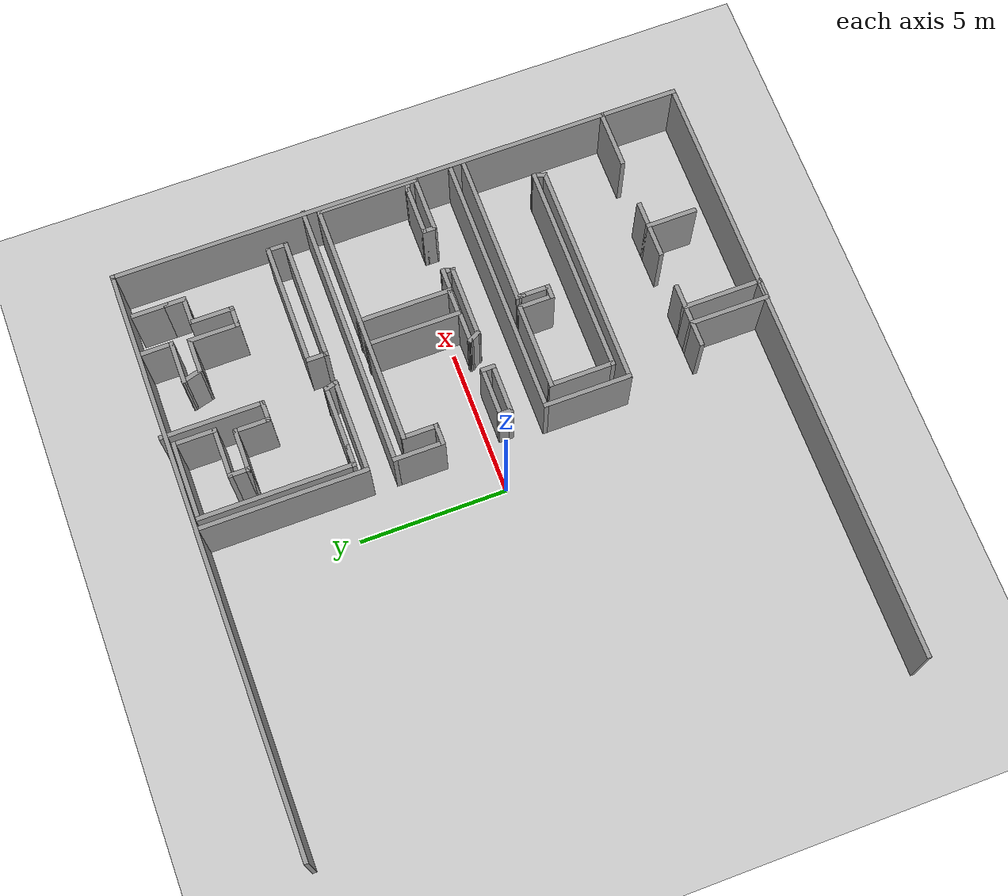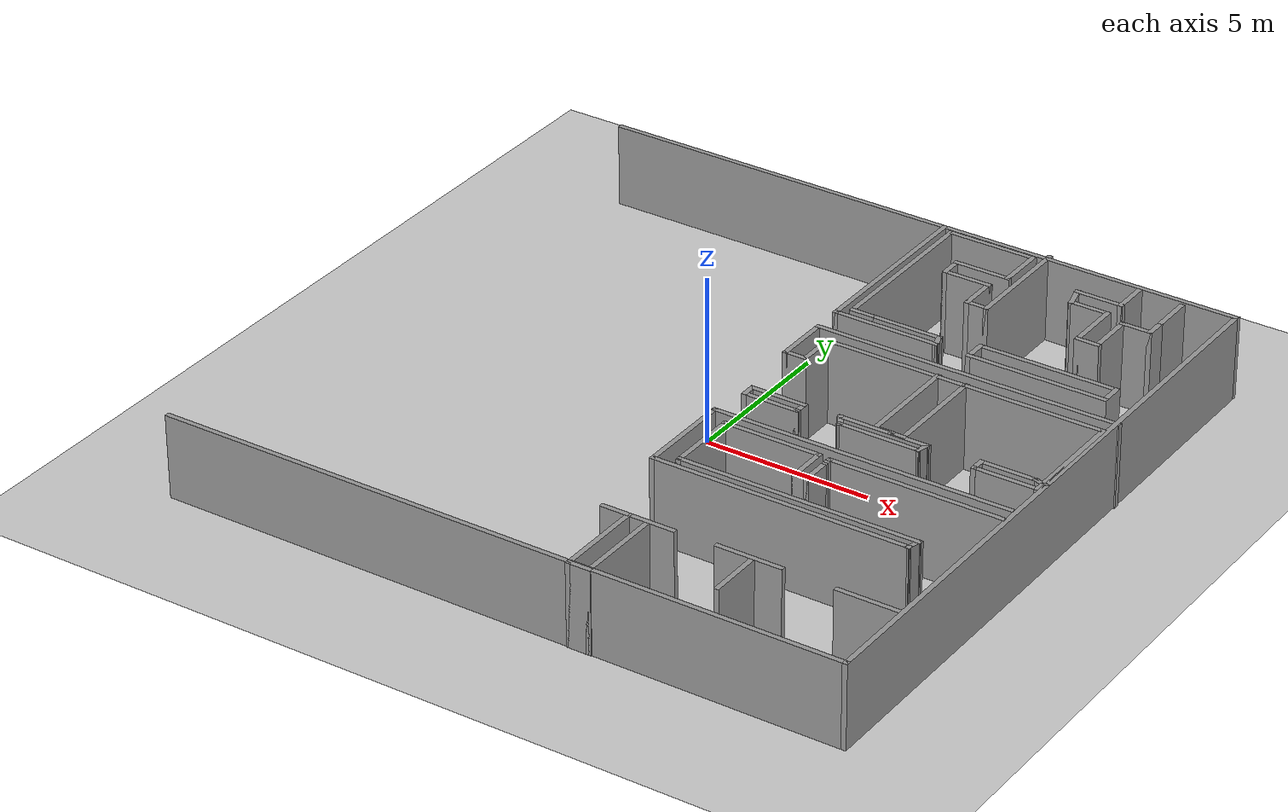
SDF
<sdf version="1.6">
 <world name="default">
  <model name="ground_plane">
   <static>1</static>
   <link name="link">
    <collision name="collision">
     <geometry><plane><normal>0 0 1</normal><size>100 100</size></plane></geometry>
     <surface>
      <contact><collide_bitmask>65535</collide_bitmask></contact>
      <friction><ode><mu>100</mu><mu2>50</mu2></ode></friction>
     </surface>
    </collision>
    <visual name="visual">
     <cast_shadows>0</cast_shadows>
     <geometry><plane><normal>0 0 1</normal><size>100 100</size></plane></geometry>
     <material>
      <script><uri>file://media/materials/scripts/gazebo.material</uri><name>Gazebo/Grey</name></script>
     </material>
    </visual>
   </link>
  </model>
  <model name="maze3">
   <pose>-2.12567 -0.040399 0 0 -0 0</pose>
   <link name="Wall_12">
    <collision name="Wall_12_Collision">
     <geometry><box><size>20.75 0.15 2.5</size></box></geometry>
     <pose>0 0 1.25 0 -0 0</pose>
    </collision>
    <visual name="Wall_12_Visual">
     <pose>0 0 1.25 0 -0 0</pose>
     <geometry><box><size>20.75 0.15 2.5</size></box></geometry>
     <material>
      <script><uri>file://media/materials/scripts/gazebo.material</uri><name>Gazebo/Grey</name></script>
      <ambient>1 1 1 1</ambient>
     </material>
     <meta><layer>0</layer></meta>
    </visual>
    <pose>2.33017 -9.8513 0 0 -0 0</pose>
   </link>
   <link name="Wall_13">
    <collision name="Wall_13_Collision">
     <geometry><box><size>19.75 0.15 2.5</size></box></geometry>
     <pose>0 0 1.25 0 -0 0</pose>
    </collision>
    <visual name="Wall_13_Visual">
     <pose>0 0 1.25 0 -0 0</pose>
     <geometry><box><size>19.75 0.15 2.5</size></box></geometry>
     <material>
      <script><uri>file://media/materials/scripts/gazebo.material</uri><name>Gazebo/Grey</name></script>
      <ambient>1 1 1 1</ambient>
     </material>
     <meta><layer>0</layer></meta>
    </visual>
    <pose>12.6302 -0.051301 0 0 -0 1.5708</pose>
   </link>
   <link name="Wall_133">
    <collision name="Wall_133_Collision">
     <geometry><box><size>5.75 0.15 2.5</size></box></geometry>
     <pose>0 0 1.25 0 -0 0</pose>
    </collision>
    <visual name="Wall_133_Visual">
     <pose>0 0 1.25 0 -0 0</pose>
     <geometry><box><size>5.75 0.15 2.5</size></box></geometry>
     <material>
      <script><uri>file://media/materials/scripts/gazebo.material</uri><name>Gazebo/Grey</name></script>
      <ambient>1 1 1 1</ambient>
     </material>
     <meta><layer>0</layer></meta>
    </visual>
    <pose>3.55274 6.93876 0 0 -0 -1.5708</pose>
   </link>
   <link name="Wall_134">
    <collision name="Wall_134_Collision">
     <geometry><box><size>3.25 0.15 2.5</size></box></geometry>
     <pose>0 0 1.25 0 -0 0</pose>
    </collision>
    <visual name="Wall_134_Visual">
     <pose>0 0 1.25 0 -0 0</pose>
     <geometry><box><size>3.25 0.15 2.5</size></box></geometry>
     <material>
      <script><uri>file://media/materials/scripts/gazebo.material</uri><name>Gazebo/Grey</name></script>
      <ambient>1 1 1 1</ambient>
     </material>
     <meta><layer>0</layer></meta>
    </visual>
    <pose>5.10274 4.13876 0 0 -0 0</pose>
   </link>
   <link name="Wall_135">
    <collision name="Wall_135_Collision">
     <geometry><box><size>0.5 0.15 2.5</size></box></geometry>
     <pose>0 0 1.25 0 -0 0</pose>
    </collision>
    <visual name="Wall_135_Visual">
     <pose>0 0 1.25 0 -0 0</pose>
     <geometry><box><size>0.5 0.15 2.5</size></box></geometry>
     <material>
      <script><uri>file://media/materials/scripts/gazebo.material</uri><name>Gazebo/Grey</name></script>
      <ambient>1 1 1 1</ambient>
     </material>
     <meta><layer>0</layer></meta>
    </visual>
    <pose>6.60745 4.3078 0 0 -0 1.8326</pose>
   </link>
   <link name="Wall_136">
    <collision name="Wall_136_Collision">
     <geometry><box><size>2.25 0.15 2.5</size></box></geometry>
     <pose>0 0 1.25 0 -0 0</pose>
    </collision>
    <visual name="Wall_136_Visual">
     <pose>0 0 1.25 0 -0 0</pose>
     <geometry><box><size>2.25 0.15 2.5</size></box></geometry>
     <material>
      <script><uri>file://media/materials/scripts/gazebo.material</uri><name>Gazebo/Grey</name></script>
      <ambient>1 1 1 1</ambient>
     </material>
     <meta><layer>0</layer></meta>
    </visual>
    <pose>5.51215 4.47684 0 0 -0 3.14159</pose>
   </link>
   <link name="Wall_137">
    <collision name="Wall_137_Collision">
     <geometry><box><size>0.75 0.15 2.5</size></box></geometry>
     <pose>0 0 1.25 0 -0 0</pose>
    </collision>
    <visual name="Wall_137_Visual">
     <pose>0 0 1.25 0 -0 0</pose>
     <geometry><box><size>0.75 0.15 2.5</size></box></geometry>
     <material>
      <script><uri>file://media/materials/scripts/gazebo.material</uri><name>Gazebo/Grey</name></script>
      <ambient>1 1 1 1</ambient>
     </material>
     <meta><layer>0</layer></meta>
    </visual>
    <pose>4.16215 4.47684 0 0 -0 3.14159</pose>
   </link>
   <link name="Wall_138">
    <collision name="Wall_138_Collision">
     <geometry><box><size>5.25 0.15 2.5</size></box></geometry>
     <pose>0 0 1.25 0 -0 0</pose>
    </collision>
    <visual name="Wall_138_Visual">
     <pose>0 0 1.25 0 -0 0</pose>
     <geometry><box><size>5.25 0.15 2.5</size></box></geometry>
     <material>
      <script><uri>file://media/materials/scripts/gazebo.material</uri><name>Gazebo/Grey</name></script>
      <ambient>1 1 1 1</ambient>
     </material>
     <meta><layer>0</layer></meta>
    </visual>
    <pose>3.86215 7.02684 0 0 -0 1.5708</pose>
   </link>
   <link name="Wall_139">
    <collision name="Wall_139_Collision">
     <geometry><box><size>2.75 0.15 2.5</size></box></geometry>
     <pose>0 0 1.25 0 -0 0</pose>
    </collision>
    <visual name="Wall_139_Visual">
     <pose>0 0 1.25 0 -0 0</pose>
     <geometry><box><size>2.75 0.15 2.5</size></box></geometry>
     <material>
      <script><uri>file://media/materials/scripts/gazebo.material</uri><name>Gazebo/Grey</name></script>
      <ambient>1 1 1 1</ambient>
     </material>
     <meta><layer>0</layer></meta>
    </visual>
    <pose>5.16215 9.57684 0 0 -0 0</pose>
   </link>
   <link name="Wall_14">
    <collision name="Wall_14_Collision">
     <geometry><box><size>20 0.15 2.5</size></box></geometry>
     <pose>0 0 1.25 0 -0 0</pose>
    </collision>
    <visual name="Wall_14_Visual">
     <pose>0 0 1.25 0 -0 0</pose>
     <geometry><box><size>20 0.15 2.5</size></box></geometry>
     <material>
      <script><uri>file://media/materials/scripts/gazebo.material</uri><name>Gazebo/Grey</name></script>
      <ambient>1 1 1 1</ambient>
     </material>
     <meta><layer>0</layer></meta>
    </visual>
    <pose>2.70517 9.7487 0 0 -0 3.14159</pose>
   </link>
   <link name="Wall_140">
    <collision name="Wall_140_Collision">
     <geometry><box><size>1.5 0.15 2.5</size></box></geometry>
     <pose>0 0 1.25 0 -0 0</pose>
    </collision>
    <visual name="Wall_140_Visual">
     <pose>0 0 1.25 0 -0 0</pose>
     <geometry><box><size>1.5 0.15 2.5</size></box></geometry>
     <material>
      <script><uri>file://media/materials/scripts/gazebo.material</uri><name>Gazebo/Grey</name></script>
      <ambient>1 1 1 1</ambient>
     </material>
     <meta><layer>0</layer></meta>
    </visual>
    <pose>6.46215 8.90184 0 0 -0 -1.5708</pose>
   </link>
   <link name="Wall_141">
    <collision name="Wall_141_Collision">
     <geometry><box><size>1.75 0.15 2.5</size></box></geometry>
     <pose>0 0 1.25 0 -0 0</pose>
    </collision>
    <visual name="Wall_141_Visual">
     <pose>0 0 1.25 0 -0 0</pose>
     <geometry><box><size>1.75 0.15 2.5</size></box></geometry>
     <material>
      <script><uri>file://media/materials/scripts/gazebo.material</uri><name>Gazebo/Grey</name></script>
      <ambient>1 1 1 1</ambient>
     </material>
     <meta><layer>0</layer></meta>
    </visual>
    <pose>5.66215 8.22683 0 0 -0 3.14159</pose>
   </link>
   <link name="Wall_142">
    <collision name="Wall_142_Collision">
     <geometry><box><size>0.75 0.15 2.5</size></box></geometry>
     <pose>0 0 1.25 0 -0 0</pose>
    </collision>
    <visual name="Wall_142_Visual">
     <pose>0 0 1.25 0 -0 0</pose>
     <geometry><box><size>0.75 0.15 2.5</size></box></geometry>
     <material>
      <script><uri>file://media/materials/scripts/gazebo.material</uri><name>Gazebo/Grey</name></script>
      <ambient>1 1 1 1</ambient>
     </material>
     <meta><layer>0</layer></meta>
    </visual>
    <pose>4.86215 7.92684 0 0 -0 -1.5708</pose>
   </link>
   <link name="Wall_143">
    <collision name="Wall_143_Collision">
     <geometry><box><size>1.5 0.15 2.5</size></box></geometry>
     <pose>0 0 1.25 0 -0 0</pose>
    </collision>
    <visual name="Wall_143_Visual">
     <pose>0 0 1.25 0 -0 0</pose>
     <geometry><box><size>1.5 0.15 2.5</size></box></geometry>
     <material>
      <script><uri>file://media/materials/scripts/gazebo.material</uri><name>Gazebo/Grey</name></script>
      <ambient>1 1 1 1</ambient>
     </material>
     <meta><layer>0</layer></meta>
    </visual>
    <pose>5.53715 7.62684 0 0 -0 0</pose>
   </link>
   <link name="Wall_144">
    <collision name="Wall_144_Collision">
     <geometry><box><size>1.25 0.15 2.5</size></box></geometry>
     <pose>0 0 1.25 0 -0 0</pose>
    </collision>
    <visual name="Wall_144_Visual">
     <pose>0 0 1.25 0 -0 0</pose>
     <geometry><box><size>1.25 0.15 2.5</size></box></geometry>
     <material>
      <script><uri>file://media/materials/scripts/gazebo.material</uri><name>Gazebo/Grey</name></script>
      <ambient>1 1 1 1</ambient>
     </material>
     <meta><layer>0</layer></meta>
    </visual>
    <pose>6.21215 7.07684 0 0 -0 -1.5708</pose>
   </link>
   <link name="Wall_145">
    <collision name="Wall_145_Collision">
     <geometry><box><size>0.75 0.15 2.5</size></box></geometry>
     <pose>0 0 1.25 0 -0 0</pose>
    </collision>
    <visual name="Wall_145_Visual">
     <pose>0 0 1.25 0 -0 0</pose>
     <geometry><box><size>0.75 0.15 2.5</size></box></geometry>
     <material>
      <script><uri>file://media/materials/scripts/gazebo.material</uri><name>Gazebo/Grey</name></script>
      <ambient>1 1 1 1</ambient>
     </material>
     <meta><layer>0</layer></meta>
    </visual>
    <pose>6.51215 6.52684 0 0 -0 0</pose>
   </link>
   <link name="Wall_146">
    <collision name="Wall_146_Collision">
     <geometry><box><size>3.5 0.15 2.5</size></box></geometry>
     <pose>0 0 1.25 0 -0 0</pose>
    </collision>
    <visual name="Wall_146_Visual">
     <pose>0 0 1.25 0 -0 0</pose>
     <geometry><box><size>3.5 0.15 2.5</size></box></geometry>
     <material>
      <script><uri>file://media/materials/scripts/gazebo.material</uri><name>Gazebo/Grey</name></script>
      <ambient>1 1 1 1</ambient>
     </material>
     <meta><layer>0</layer></meta>
    </visual>
    <pose>6.81215 8.20184 0 0 -0 1.5708</pose>
   </link>
   <link name="Wall_148">
    <collision name="Wall_148_Collision">
     <geometry><box><size>4.25 0.15 2.5</size></box></geometry>
     <pose>0 0 1.25 0 -0 0</pose>
    </collision>
    <visual name="Wall_148_Visual">
     <pose>0 0 1.25 0 -0 0</pose>
     <geometry><box><size>4.25 0.15 2.5</size></box></geometry>
     <material>
      <script><uri>file://media/materials/scripts/gazebo.material</uri><name>Gazebo/Grey</name></script>
      <ambient>1 1 1 1</ambient>
     </material>
     <meta><layer>0</layer></meta>
    </visual>
    <pose>9.74337 4.71418 0 0 -0 0</pose>
   </link>
   <link name="Wall_149">
    <collision name="Wall_149_Collision">
     <geometry><box><size>0.75 0.15 2.5</size></box></geometry>
     <pose>0 0 1.25 0 -0 0</pose>
    </collision>
    <visual name="Wall_149_Visual">
     <pose>0 0 1.25 0 -0 0</pose>
     <geometry><box><size>0.75 0.15 2.5</size></box></geometry>
     <material>
      <script><uri>file://media/materials/scripts/gazebo.material</uri><name>Gazebo/Grey</name></script>
      <ambient>1 1 1 1</ambient>
     </material>
     <meta><layer>0</layer></meta>
    </visual>
    <pose>11.7934 4.41418 0 0 -0 -1.5708</pose>
   </link>
   <link name="Wall_150">
    <collision name="Wall_150_Collision">
     <geometry><box><size>4.25 0.15 2.5</size></box></geometry>
     <pose>0 0 1.25 0 -0 0</pose>
    </collision>
    <visual name="Wall_150_Visual">
     <pose>0 0 1.25 0 -0 0</pose>
     <geometry><box><size>4.25 0.15 2.5</size></box></geometry>
     <material>
      <script><uri>file://media/materials/scripts/gazebo.material</uri><name>Gazebo/Grey</name></script>
      <ambient>1 1 1 1</ambient>
     </material>
     <meta><layer>0</layer></meta>
    </visual>
    <pose>9.74337 4.11418 0 0 -0 3.14159</pose>
   </link>
   <link name="Wall_151">
    <collision name="Wall_151_Collision">
     <geometry><box><size>0.75 0.15 2.5</size></box></geometry>
     <pose>0 0 1.25 0 -0 0</pose>
    </collision>
    <visual name="Wall_151_Visual">
     <pose>0 0 1.25 0 -0 0</pose>
     <geometry><box><size>0.75 0.15 2.5</size></box></geometry>
     <material>
      <script><uri>file://media/materials/scripts/gazebo.material</uri><name>Gazebo/Grey</name></script>
      <ambient>1 1 1 1</ambient>
     </material>
     <meta><layer>0</layer></meta>
    </visual>
    <pose>7.69337 4.41418 0 0 -0 1.5708</pose>
   </link>
   <link name="Wall_153">
    <collision name="Wall_153_Collision">
     <geometry><box><size>1.25 0.15 2.5</size></box></geometry>
     <pose>0 0 1.25 0 -0 0</pose>
    </collision>
    <visual name="Wall_153_Visual">
     <pose>0 0 1.25 0 -0 0</pose>
     <geometry><box><size>1.25 0.15 2.5</size></box></geometry>
     <material>
      <script><uri>file://media/materials/scripts/gazebo.material</uri><name>Gazebo/Grey</name></script>
      <ambient>1 1 1 1</ambient>
     </material>
     <meta><layer>0</layer></meta>
    </visual>
    <pose>9.74042 9.18876 0 0 -0 -1.5708</pose>
   </link>
   <link name="Wall_154">
    <collision name="Wall_154_Collision">
     <geometry><box><size>1.5 0.15 2.5</size></box></geometry>
     <pose>0 0 1.25 0 -0 0</pose>
    </collision>
    <visual name="Wall_154_Visual">
     <pose>0 0 1.25 0 -0 0</pose>
     <geometry><box><size>1.5 0.15 2.5</size></box></geometry>
     <material>
      <script><uri>file://media/materials/scripts/gazebo.material</uri><name>Gazebo/Grey</name></script>
      <ambient>1 1 1 1</ambient>
     </material>
     <meta><layer>0</layer></meta>
    </visual>
    <pose>9.06542 8.63876 0 0 -0 3.14159</pose>
   </link>
   <link name="Wall_155">
    <collision name="Wall_155_Collision">
     <geometry><box><size>0.75 0.15 2.5</size></box></geometry>
     <pose>0 0 1.25 0 -0 0</pose>
    </collision>
    <visual name="Wall_155_Visual">
     <pose>0 0 1.25 0 -0 0</pose>
     <geometry><box><size>0.75 0.15 2.5</size></box></geometry>
     <material>
      <script><uri>file://media/materials/scripts/gazebo.material</uri><name>Gazebo/Grey</name></script>
      <ambient>1 1 1 1</ambient>
     </material>
     <meta><layer>0</layer></meta>
    </visual>
    <pose>8.46806 8.34898 0 0 -0 -1.309</pose>
   </link>
   <link name="Wall_156">
    <collision name="Wall_156_Collision">
     <geometry><box><size>1.25 0.15 2.5</size></box></geometry>
     <pose>0 0 1.25 0 -0 0</pose>
    </collision>
    <visual name="Wall_156_Visual">
     <pose>0 0 1.25 0 -0 0</pose>
     <geometry><box><size>1.25 0.15 2.5</size></box></geometry>
     <material>
      <script><uri>file://media/materials/scripts/gazebo.material</uri><name>Gazebo/Grey</name></script>
      <ambient>1 1 1 1</ambient>
     </material>
     <meta><layer>0</layer></meta>
    </visual>
    <pose>9.09571 8.05921 0 0 -0 0</pose>
   </link>
   <link name="Wall_157">
    <collision name="Wall_157_Collision">
     <geometry><box><size>1.75 0.15 2.5</size></box></geometry>
     <pose>0 0 1.25 0 -0 0</pose>
    </collision>
    <visual name="Wall_157_Visual">
     <pose>0 0 1.25 0 -0 0</pose>
     <geometry><box><size>1.75 0.15 2.5</size></box></geometry>
     <material>
      <script><uri>file://media/materials/scripts/gazebo.material</uri><name>Gazebo/Grey</name></script>
      <ambient>1 1 1 1</ambient>
     </material>
     <meta><layer>0</layer></meta>
    </visual>
    <pose>9.64571 7.25921 0 0 -0 -1.5708</pose>
   </link>
   <link name="Wall_158">
    <collision name="Wall_158_Collision">
     <geometry><box><size>0.75 0.15 2.5</size></box></geometry>
     <pose>0 0 1.25 0 -0 0</pose>
    </collision>
    <visual name="Wall_158_Visual">
     <pose>0 0 1.25 0 -0 0</pose>
     <geometry><box><size>0.75 0.15 2.5</size></box></geometry>
     <material>
      <script><uri>file://media/materials/scripts/gazebo.material</uri><name>Gazebo/Grey</name></script>
      <ambient>1 1 1 1</ambient>
     </material>
     <meta><layer>0</layer></meta>
    </visual>
    <pose>9.94571 6.45921 0 0 -0 0</pose>
   </link>
   <link name="Wall_159">
    <collision name="Wall_159_Collision">
     <geometry><box><size>1.5 0.15 2.5</size></box></geometry>
     <pose>0 0 1.25 0 -0 0</pose>
    </collision>
    <visual name="Wall_159_Visual">
     <pose>0 0 1.25 0 -0 0</pose>
     <geometry><box><size>1.5 0.15 2.5</size></box></geometry>
     <material>
      <script><uri>file://media/materials/scripts/gazebo.material</uri><name>Gazebo/Grey</name></script>
      <ambient>1 1 1 1</ambient>
     </material>
     <meta><layer>0</layer></meta>
    </visual>
    <pose>10.2457 7.13421 0 0 -0 1.5708</pose>
   </link>
   <link name="Wall_160">
    <collision name="Wall_160_Collision">
     <geometry><box><size>1 0.15 2.5</size></box></geometry>
     <pose>0 0 1.25 0 -0 0</pose>
    </collision>
    <visual name="Wall_160_Visual">
     <pose>0 0 1.25 0 -0 0</pose>
     <geometry><box><size>1 0.15 2.5</size></box></geometry>
     <material>
      <script><uri>file://media/materials/scripts/gazebo.material</uri><name>Gazebo/Grey</name></script>
      <ambient>1 1 1 1</ambient>
     </material>
     <meta><layer>0</layer></meta>
    </visual>
    <pose>10.6707 7.80921 0 0 -0 0</pose>
   </link>
   <link name="Wall_161">
    <collision name="Wall_161_Collision">
     <geometry><box><size>0.75 0.15 2.5</size></box></geometry>
     <pose>0 0 1.25 0 -0 0</pose>
    </collision>
    <visual name="Wall_161_Visual">
     <pose>0 0 1.25 0 -0 0</pose>
     <geometry><box><size>0.75 0.15 2.5</size></box></geometry>
     <material>
      <script><uri>file://media/materials/scripts/gazebo.material</uri><name>Gazebo/Grey</name></script>
      <ambient>1 1 1 1</ambient>
     </material>
     <meta><layer>0</layer></meta>
    </visual>
    <pose>11.0957 8.10921 0 0 -0 1.5708</pose>
   </link>
   <link name="Wall_162">
    <collision name="Wall_162_Collision">
     <geometry><box><size>1.25 0.15 2.5</size></box></geometry>
     <pose>0 0 1.25 0 -0 0</pose>
    </collision>
    <visual name="Wall_162_Visual">
     <pose>0 0 1.25 0 -0 0</pose>
     <geometry><box><size>1.25 0.15 2.5</size></box></geometry>
     <material>
      <script><uri>file://media/materials/scripts/gazebo.material</uri><name>Gazebo/Grey</name></script>
      <ambient>1 1 1 1</ambient>
     </material>
     <meta><layer>0</layer></meta>
    </visual>
    <pose>11.0957 8.95921 0 0 -0 1.5708</pose>
   </link>
   <link name="Wall_164">
    <collision name="Wall_164_Collision">
     <geometry><box><size>9.25 0.15 2.5</size></box></geometry>
     <pose>0 0 1.25 0 -0 0</pose>
    </collision>
    <visual name="Wall_164_Visual">
     <pose>0 0 1.25 0 -0 0</pose>
     <geometry><box><size>9.25 0.15 2.5</size></box></geometry>
     <material>
      <script><uri>file://media/materials/scripts/gazebo.material</uri><name>Gazebo/Grey</name></script>
      <ambient>1 1 1 1</ambient>
     </material>
     <meta><layer>0</layer></meta>
    </visual>
    <pose>8.12143 3.22541 0 0 -0 3.14159</pose>
   </link>
   <link name="Wall_165">
    <collision name="Wall_165_Collision">
     <geometry><box><size>1.75 0.15 2.5</size></box></geometry>
     <pose>0 0 1.25 0 -0 0</pose>
    </collision>
    <visual name="Wall_165_Visual">
     <pose>0 0 1.25 0 -0 0</pose>
     <geometry><box><size>1.75 0.15 2.5</size></box></geometry>
     <material>
      <script><uri>file://media/materials/scripts/gazebo.material</uri><name>Gazebo/Grey</name></script>
      <ambient>1 1 1 1</ambient>
     </material>
     <meta><layer>0</layer></meta>
    </visual>
    <pose>3.57143 2.42541 0 0 -0 -1.5708</pose>
   </link>
   <link name="Wall_166">
    <collision name="Wall_166_Collision">
     <geometry><box><size>0.75 0.15 2.5</size></box></geometry>
     <pose>0 0 1.25 0 -0 0</pose>
    </collision>
    <visual name="Wall_166_Visual">
     <pose>0 0 1.25 0 -0 0</pose>
     <geometry><box><size>0.75 0.15 2.5</size></box></geometry>
     <material>
      <script><uri>file://media/materials/scripts/gazebo.material</uri><name>Gazebo/Grey</name></script>
      <ambient>1 1 1 1</ambient>
     </material>
     <meta><layer>0</layer></meta>
    </visual>
    <pose>3.87143 1.62541 0 0 -0 0</pose>
   </link>
   <link name="Wall_167">
    <collision name="Wall_167_Collision">
     <geometry><box><size>1.25 0.15 2.5</size></box></geometry>
     <pose>0 0 1.25 0 -0 0</pose>
    </collision>
    <visual name="Wall_167_Visual">
     <pose>0 0 1.25 0 -0 0</pose>
     <geometry><box><size>1.25 0.15 2.5</size></box></geometry>
     <material>
      <script><uri>file://media/materials/scripts/gazebo.material</uri><name>Gazebo/Grey</name></script>
      <ambient>1 1 1 1</ambient>
     </material>
     <meta><layer>0</layer></meta>
    </visual>
    <pose>4.17143 2.17541 0 0 -0 1.5708</pose>
   </link>
   <link name="Wall_168">
    <collision name="Wall_168_Collision">
     <geometry><box><size>8.5 0.15 2.5</size></box></geometry>
     <pose>0 0 1.25 0 -0 0</pose>
    </collision>
    <visual name="Wall_168_Visual">
     <pose>0 0 1.25 0 -0 0</pose>
     <geometry><box><size>8.5 0.15 2.5</size></box></geometry>
     <material>
      <script><uri>file://media/materials/scripts/gazebo.material</uri><name>Gazebo/Grey</name></script>
      <ambient>1 1 1 1</ambient>
     </material>
     <meta><layer>0</layer></meta>
    </visual>
    <pose>8.34643 2.72541 0 0 -0 0</pose>
   </link>
   <link name="Wall_169">
    <collision name="Wall_169_Collision">
     <geometry><box><size>3.5 0.15 2.5</size></box></geometry>
     <pose>0 0 1.25 0 -0 0</pose>
    </collision>
    <visual name="Wall_169_Visual">
     <pose>0 0 1.25 0 -0 0</pose>
     <geometry><box><size>3.5 0.15 2.5</size></box></geometry>
     <material>
      <script><uri>file://media/materials/scripts/gazebo.material</uri><name>Gazebo/Grey</name></script>
      <ambient>1 1 1 1</ambient>
     </material>
     <meta><layer>0</layer></meta>
    </visual>
    <pose>12.5214 1.05041 0 0 -0 -1.5708</pose>
   </link>
   <link name="Wall_170">
    <collision name="Wall_170_Collision">
     <geometry><box><size>2 0.15 2.5</size></box></geometry>
     <pose>0 0 1.25 0 -0 0</pose>
    </collision>
    <visual name="Wall_170_Visual">
     <pose>0 0 1.25 0 -0 0</pose>
     <geometry><box><size>2 0.15 2.5</size></box></geometry>
     <material>
      <script><uri>file://media/materials/scripts/gazebo.material</uri><name>Gazebo/Grey</name></script>
      <ambient>1 1 1 1</ambient>
     </material>
     <meta><layer>0</layer></meta>
    </visual>
    <pose>11.5964 -0.624586 0 0 -0 3.14159</pose>
   </link>
   <link name="Wall_171">
    <collision name="Wall_171_Collision">
     <geometry><box><size>0.5 0.15 2.5</size></box></geometry>
     <pose>0 0 1.25 0 -0 0</pose>
    </collision>
    <visual name="Wall_171_Visual">
     <pose>0 0 1.25 0 -0 0</pose>
     <geometry><box><size>0.5 0.15 2.5</size></box></geometry>
     <material>
      <script><uri>file://media/materials/scripts/gazebo.material</uri><name>Gazebo/Grey</name></script>
      <ambient>1 1 1 1</ambient>
     </material>
     <meta><layer>0</layer></meta>
    </visual>
    <pose>10.6714 -0.449586 0 0 -0 1.5708</pose>
   </link>
   <link name="Wall_172">
    <collision name="Wall_172_Collision">
     <geometry><box><size>1.75 0.15 2.5</size></box></geometry>
     <pose>0 0 1.25 0 -0 0</pose>
    </collision>
    <visual name="Wall_172_Visual">
     <pose>0 0 1.25 0 -0 0</pose>
     <geometry><box><size>1.75 0.15 2.5</size></box></geometry>
     <material>
      <script><uri>file://media/materials/scripts/gazebo.material</uri><name>Gazebo/Grey</name></script>
      <ambient>1 1 1 1</ambient>
     </material>
     <meta><layer>0</layer></meta>
    </visual>
    <pose>11.4714 -0.274586 0 0 -0 0</pose>
   </link>
   <link name="Wall_173">
    <collision name="Wall_173_Collision">
     <geometry><box><size>0.5 0.15 2.5</size></box></geometry>
     <pose>0 0 1.25 0 -0 0</pose>
    </collision>
    <visual name="Wall_173_Visual">
     <pose>0 0 1.25 0 -0 0</pose>
     <geometry><box><size>0.5 0.15 2.5</size></box></geometry>
     <material>
      <script><uri>file://media/materials/scripts/gazebo.material</uri><name>Gazebo/Grey</name></script>
      <ambient>1 1 1 1</ambient>
     </material>
     <meta><layer>0</layer></meta>
    </visual>
    <pose>12.4405 -0.31988 0 0 -0 -0.261799</pose>
   </link>
   <link name="Wall_175">
    <collision name="Wall_175_Collision">
     <geometry><box><size>2.5 0.15 2.5</size></box></geometry>
     <pose>0 0 1.25 0 -0 0</pose>
    </collision>
    <visual name="Wall_175_Visual">
     <pose>0 0 1.25 0 -0 0</pose>
     <geometry><box><size>2.5 0.15 2.5</size></box></geometry>
     <material>
      <script><uri>file://media/materials/scripts/gazebo.material</uri><name>Gazebo/Grey</name></script>
      <ambient>1 1 1 1</ambient>
     </material>
     <meta><layer>0</layer></meta>
    </visual>
    <pose>7.86756 -0.682595 0 0 -0 3.14159</pose>
   </link>
   <link name="Wall_176">
    <collision name="Wall_176_Collision">
     <geometry><box><size>0.5 0.15 2.5</size></box></geometry>
     <pose>0 0 1.25 0 -0 0</pose>
    </collision>
    <visual name="Wall_176_Visual">
     <pose>0 0 1.25 0 -0 0</pose>
     <geometry><box><size>0.5 0.15 2.5</size></box></geometry>
     <material>
      <script><uri>file://media/materials/scripts/gazebo.material</uri><name>Gazebo/Grey</name></script>
      <ambient>1 1 1 1</ambient>
     </material>
     <meta><layer>0</layer></meta>
    </visual>
    <pose>6.60506 -0.531041 0 0 -0 2.0944</pose>
   </link>
   <link name="Wall_177">
    <collision name="Wall_177_Collision">
     <geometry><box><size>2.75 0.15 2.5</size></box></geometry>
     <pose>0 0 1.25 0 -0 0</pose>
    </collision>
    <visual name="Wall_177_Visual">
     <pose>0 0 1.25 0 -0 0</pose>
     <geometry><box><size>2.75 0.15 2.5</size></box></geometry>
     <material>
      <script><uri>file://media/materials/scripts/gazebo.material</uri><name>Gazebo/Grey</name></script>
      <ambient>1 1 1 1</ambient>
     </material>
     <meta><layer>0</layer></meta>
    </visual>
    <pose>7.81756 -0.379486 0 0 -0 0</pose>
   </link>
   <link name="Wall_178">
    <collision name="Wall_178_Collision">
     <geometry><box><size>0.46225 0.15 2.5</size></box></geometry>
     <pose>0 0 1.25 0 -0 0</pose>
    </collision>
    <visual name="Wall_178_Visual">
     <pose>0 0 1.25 0 -0 0</pose>
     <geometry><box><size>0.46225 0.15 2.5</size></box></geometry>
     <material>
      <script><uri>file://media/materials/scripts/gazebo.material</uri><name>Gazebo/Grey</name></script>
      <ambient>1 1 1 1</ambient>
     </material>
     <meta><layer>0</layer></meta>
    </visual>
    <pose>9.08006 -0.531041 0 0 -0 -1.81336</pose>
   </link>
   <link name="Wall_180">
    <collision name="Wall_180_Collision">
     <geometry><box><size>1.75 0.15 2.5</size></box></geometry>
     <pose>0 0 1.25 0 -0 0</pose>
    </collision>
    <visual name="Wall_180_Visual">
     <pose>0 0 1.25 0 -0 0</pose>
     <geometry><box><size>1.75 0.15 2.5</size></box></geometry>
     <material>
      <script><uri>file://media/materials/scripts/gazebo.material</uri><name>Gazebo/Grey</name></script>
      <ambient>1 1 1 1</ambient>
     </material>
     <meta><layer>0</layer></meta>
    </visual>
    <pose>4.63188 -0.403452 0 0 -0 0</pose>
   </link>
   <link name="Wall_181">
    <collision name="Wall_181_Collision">
     <geometry><box><size>0.5 0.15 2.5</size></box></geometry>
     <pose>0 0 1.25 0 -0 0</pose>
    </collision>
    <visual name="Wall_181_Visual">
     <pose>0 0 1.25 0 -0 0</pose>
     <geometry><box><size>0.5 0.15 2.5</size></box></geometry>
     <material>
      <script><uri>file://media/materials/scripts/gazebo.material</uri><name>Gazebo/Grey</name></script>
      <ambient>1 1 1 1</ambient>
     </material>
     <meta><layer>0</layer></meta>
    </visual>
    <pose>5.43188 -0.578452 0 0 -0 -1.5708</pose>
   </link>
   <link name="Wall_182">
    <collision name="Wall_182_Collision">
     <geometry><box><size>1.75 0.15 2.5</size></box></geometry>
     <pose>0 0 1.25 0 -0 0</pose>
    </collision>
    <visual name="Wall_182_Visual">
     <pose>0 0 1.25 0 -0 0</pose>
     <geometry><box><size>1.75 0.15 2.5</size></box></geometry>
     <material>
      <script><uri>file://media/materials/scripts/gazebo.material</uri><name>Gazebo/Grey</name></script>
      <ambient>1 1 1 1</ambient>
     </material>
     <meta><layer>0</layer></meta>
    </visual>
    <pose>4.63188 -0.753452 0 0 -0 3.14159</pose>
   </link>
   <link name="Wall_183">
    <collision name="Wall_183_Collision">
     <geometry><box><size>0.5 0.15 2.5</size></box></geometry>
     <pose>0 0 1.25 0 -0 0</pose>
    </collision>
    <visual name="Wall_183_Visual">
     <pose>0 0 1.25 0 -0 0</pose>
     <geometry><box><size>0.5 0.15 2.5</size></box></geometry>
     <material>
      <script><uri>file://media/materials/scripts/gazebo.material</uri><name>Gazebo/Grey</name></script>
      <ambient>1 1 1 1</ambient>
     </material>
     <meta><layer>0</layer></meta>
    </visual>
    <pose>3.83188 -0.578452 0 0 -0 1.5708</pose>
   </link>
   <link name="Wall_185">
    <collision name="Wall_185_Collision">
     <geometry><box><size>3.25 0.15 2.5</size></box></geometry>
     <pose>0 0 1.25 0 -0 0</pose>
    </collision>
    <visual name="Wall_185_Visual">
     <pose>0 0 1.25 0 -0 0</pose>
     <geometry><box><size>3.25 0.15 2.5</size></box></geometry>
     <material>
      <script><uri>file://media/materials/scripts/gazebo.material</uri><name>Gazebo/Grey</name></script>
      <ambient>1 1 1 1</ambient>
     </material>
     <meta><layer>0</layer></meta>
    </visual>
    <pose>7.5538 1.21017 0 0 -0 -1.5708</pose>
   </link>
   <link name="Wall_186">
    <collision name="Wall_186_Collision">
     <geometry><box><size>1 0.15 2.5</size></box></geometry>
     <pose>0 0 1.25 0 -0 0</pose>
    </collision>
    <visual name="Wall_186_Visual">
     <pose>0 0 1.25 0 -0 0</pose>
     <geometry><box><size>1 0.15 2.5</size></box></geometry>
     <material>
      <script><uri>file://media/materials/scripts/gazebo.material</uri><name>Gazebo/Grey</name></script>
      <ambient>1 1 1 1</ambient>
     </material>
     <meta><layer>0</layer></meta>
    </visual>
    <pose>7.9788 -0.339826 0 0 -0 0</pose>
   </link>
   <link name="Wall_187">
    <collision name="Wall_187_Collision">
     <geometry><box><size>3.25 0.15 2.5</size></box></geometry>
     <pose>0 0 1.25 0 -0 0</pose>
    </collision>
    <visual name="Wall_187_Visual">
     <pose>0 0 1.25 0 -0 0</pose>
     <geometry><box><size>3.25 0.15 2.5</size></box></geometry>
     <material>
      <script><uri>file://media/materials/scripts/gazebo.material</uri><name>Gazebo/Grey</name></script>
      <ambient>1 1 1 1</ambient>
     </material>
     <meta><layer>0</layer></meta>
    </visual>
    <pose>8.4038 1.21017 0 0 -0 1.5708</pose>
   </link>
   <link name="Wall_37">
    <collision name="Wall_37_Collision">
     <geometry><box><size>2.25 0.15 2.5</size></box></geometry>
     <pose>0 0 1.25 0 -0 0</pose>
    </collision>
    <visual name="Wall_37_Visual">
     <pose>0 0 1.25 0 -0 0</pose>
     <geometry><box><size>2.25 0.15 2.5</size></box></geometry>
     <material>
      <script><uri>file://media/materials/scripts/gazebo.material</uri><name>Gazebo/Grey</name></script>
      <ambient>1 1 1 1</ambient>
     </material>
     <meta><layer>0</layer></meta>
    </visual>
    <pose>4.90153 -7.27684 0 0 -0 0</pose>
   </link>
   <link name="Wall_39">
    <collision name="Wall_39_Collision">
     <geometry><box><size>2.75 0.15 2.5</size></box></geometry>
     <pose>0 0 1.25 0 -0 0</pose>
    </collision>
    <visual name="Wall_39_Visual">
     <pose>0 0 1.25 0 -0 0</pose>
     <geometry><box><size>2.75 0.15 2.5</size></box></geometry>
     <material>
      <script><uri>file://media/materials/scripts/gazebo.material</uri><name>Gazebo/Grey</name></script>
      <ambient>1 1 1 1</ambient>
     </material>
     <meta><layer>0</layer></meta>
    </visual>
    <pose>4.62019 -8.57684 0 0 -0 -1.5708</pose>
   </link>
   <link name="Wall_40">
    <collision name="Wall_40_Collision">
     <geometry><box><size>0.75 0.15 2.5</size></box></geometry>
     <pose>0 0 1.25 0 -0 0</pose>
    </collision>
    <visual name="Wall_40_Visual">
     <pose>0 0 1.25 0 -0 0</pose>
     <geometry><box><size>0.75 0.15 2.5</size></box></geometry>
     <material>
      <script><uri>file://media/materials/scripts/gazebo.material</uri><name>Gazebo/Grey</name></script>
      <ambient>1 1 1 1</ambient>
     </material>
     <meta><layer>0</layer></meta>
    </visual>
    <pose>4.92019 -9.87684 0 0 -0 0</pose>
   </link>
   <link name="Wall_41">
    <collision name="Wall_41_Collision">
     <geometry><box><size>2.75 0.15 2.5</size></box></geometry>
     <pose>0 0 1.25 0 -0 0</pose>
    </collision>
    <visual name="Wall_41_Visual">
     <pose>0 0 1.25 0 -0 0</pose>
     <geometry><box><size>2.75 0.15 2.5</size></box></geometry>
     <material>
      <script><uri>file://media/materials/scripts/gazebo.material</uri><name>Gazebo/Grey</name></script>
      <ambient>1 1 1 1</ambient>
     </material>
     <meta><layer>0</layer></meta>
    </visual>
    <pose>5.22019 -8.57684 0 0 -0 1.5708</pose>
   </link>
   <link name="Wall_43">
    <collision name="Wall_43_Collision">
     <geometry><box><size>2 0.15 2.5</size></box></geometry>
     <pose>0 0 1.25 0 -0 0</pose>
    </collision>
    <visual name="Wall_43_Visual">
     <pose>0 0 1.25 0 -0 0</pose>
     <geometry><box><size>2 0.15 2.5</size></box></geometry>
     <material>
      <script><uri>file://media/materials/scripts/gazebo.material</uri><name>Gazebo/Grey</name></script>
      <ambient>1 1 1 1</ambient>
     </material>
     <meta><layer>0</layer></meta>
    </visual>
    <pose>8.1748 -7.23638 0 0 -0 0</pose>
   </link>
   <link name="Wall_46">
    <collision name="Wall_46_Collision">
     <geometry><box><size>1.75 0.15 2.5</size></box></geometry>
     <pose>0 0 1.25 0 -0 0</pose>
    </collision>
    <visual name="Wall_46_Visual">
     <pose>0 0 1.25 0 -0 0</pose>
     <geometry><box><size>1.75 0.15 2.5</size></box></geometry>
     <material>
      <script><uri>file://media/materials/scripts/gazebo.material</uri><name>Gazebo/Grey</name></script>
      <ambient>1 1 1 1</ambient>
     </material>
     <meta><layer>0</layer></meta>
    </visual>
    <pose>8.30165 -8.03638 0 0 -0 -1.5708</pose>
   </link>
   <link name="Wall_48">
    <collision name="Wall_48_Collision">
     <geometry><box><size>2 0.15 2.5</size></box></geometry>
     <pose>0 0 1.25 0 -0 0</pose>
    </collision>
    <visual name="Wall_48_Visual">
     <pose>0 0 1.25 0 -0 0</pose>
     <geometry><box><size>2 0.15 2.5</size></box></geometry>
     <material>
      <script><uri>file://media/materials/scripts/gazebo.material</uri><name>Gazebo/Grey</name></script>
      <ambient>1 1 1 1</ambient>
     </material>
     <meta><layer>0</layer></meta>
    </visual>
    <pose>11.6944 -7.27684 0 0 -0 0</pose>
   </link>
   <link name="Wall_80">
    <collision name="Wall_80_Collision">
     <geometry><box><size>9 0.15 2.5</size></box></geometry>
     <pose>0 0 1.25 0 -0 0</pose>
    </collision>
    <visual name="Wall_80_Visual">
     <pose>0 0 1.25 0 -0 0</pose>
     <geometry><box><size>9 0.15 2.5</size></box></geometry>
     <material>
      <script><uri>file://media/materials/scripts/gazebo.material</uri><name>Gazebo/Grey</name></script>
      <ambient>1 1 1 1</ambient>
     </material>
     <meta><layer>0</layer></meta>
    </visual>
    <pose>8.04357 -1.85579 0 0 -0 3.14159</pose>
   </link>
   <link name="Wall_81">
    <collision name="Wall_81_Collision">
     <geometry><box><size>3 0.15 2.5</size></box></geometry>
     <pose>0 0 1.25 0 -0 0</pose>
    </collision>
    <visual name="Wall_81_Visual">
     <pose>0 0 1.25 0 -0 0</pose>
     <geometry><box><size>3 0.15 2.5</size></box></geometry>
     <material>
      <script><uri>file://media/materials/scripts/gazebo.material</uri><name>Gazebo/Grey</name></script>
      <ambient>1 1 1 1</ambient>
     </material>
     <meta><layer>0</layer></meta>
    </visual>
    <pose>3.61857 -3.28079 0 0 -0 -1.5708</pose>
   </link>
   <link name="Wall_82">
    <collision name="Wall_82_Collision">
     <geometry><box><size>7.75 0.15 2.5</size></box></geometry>
     <pose>0 0 1.25 0 -0 0</pose>
    </collision>
    <visual name="Wall_82_Visual">
     <pose>0 0 1.25 0 -0 0</pose>
     <geometry><box><size>7.75 0.15 2.5</size></box></geometry>
     <material>
      <script><uri>file://media/materials/scripts/gazebo.material</uri><name>Gazebo/Grey</name></script>
      <ambient>1 1 1 1</ambient>
     </material>
     <meta><layer>0</layer></meta>
    </visual>
    <pose>7.41857 -4.70579 0 0 -0 0</pose>
   </link>
   <link name="Wall_83">
    <collision name="Wall_83_Collision">
     <geometry><box><size>0.5 0.15 2.5</size></box></geometry>
     <pose>0 0 1.25 0 -0 0</pose>
    </collision>
    <visual name="Wall_83_Visual">
     <pose>0 0 1.25 0 -0 0</pose>
     <geometry><box><size>0.5 0.15 2.5</size></box></geometry>
     <material>
      <script><uri>file://media/materials/scripts/gazebo.material</uri><name>Gazebo/Grey</name></script>
      <ambient>1 1 1 1</ambient>
     </material>
     <meta><layer>0</layer></meta>
    </visual>
    <pose>11.2639 -4.53675 0 0 -0 1.309</pose>
   </link>
   <link name="Wall_84">
    <collision name="Wall_84_Collision">
     <geometry><box><size>7.25 0.15 2.5</size></box></geometry>
     <pose>0 0 1.25 0 -0 0</pose>
    </collision>
    <visual name="Wall_84_Visual">
     <pose>0 0 1.25 0 -0 0</pose>
     <geometry><box><size>7.25 0.15 2.5</size></box></geometry>
     <material>
      <script><uri>file://media/materials/scripts/gazebo.material</uri><name>Gazebo/Grey</name></script>
      <ambient>1 1 1 1</ambient>
     </material>
     <meta><layer>0</layer></meta>
    </visual>
    <pose>7.75916 -4.36771 0 0 -0 3.14159</pose>
   </link>
   <link name="Wall_85">
    <collision name="Wall_85_Collision">
     <geometry><box><size>2.25 0.15 2.5</size></box></geometry>
     <pose>0 0 1.25 0 -0 0</pose>
    </collision>
    <visual name="Wall_85_Visual">
     <pose>0 0 1.25 0 -0 0</pose>
     <geometry><box><size>2.25 0.15 2.5</size></box></geometry>
     <material>
      <script><uri>file://media/materials/scripts/gazebo.material</uri><name>Gazebo/Grey</name></script>
      <ambient>1 1 1 1</ambient>
     </material>
     <meta><layer>0</layer></meta>
    </visual>
    <pose>4.20916 -3.31771 0 0 -0 1.5708</pose>
   </link>
   <link name="Wall_86">
    <collision name="Wall_86_Collision">
     <geometry><box><size>3 0.15 2.5</size></box></geometry>
     <pose>0 0 1.25 0 -0 0</pose>
    </collision>
    <visual name="Wall_86_Visual">
     <pose>0 0 1.25 0 -0 0</pose>
     <geometry><box><size>3 0.15 2.5</size></box></geometry>
     <material>
      <script><uri>file://media/materials/scripts/gazebo.material</uri><name>Gazebo/Grey</name></script>
      <ambient>1 1 1 1</ambient>
     </material>
     <meta><layer>0</layer></meta>
    </visual>
    <pose>5.63416 -2.26771 0 0 -0 0</pose>
   </link>
   <link name="Wall_87">
    <collision name="Wall_87_Collision">
     <geometry><box><size>1.25 0.15 2.5</size></box></geometry>
     <pose>0 0 1.25 0 -0 0</pose>
    </collision>
    <visual name="Wall_87_Visual">
     <pose>0 0 1.25 0 -0 0</pose>
     <geometry><box><size>1.25 0.15 2.5</size></box></geometry>
     <material>
      <script><uri>file://media/materials/scripts/gazebo.material</uri><name>Gazebo/Grey</name></script>
      <ambient>1 1 1 1</ambient>
     </material>
     <meta><layer>0</layer></meta>
    </visual>
    <pose>7.05916 -2.81771 0 0 -0 -1.5708</pose>
   </link>
   <link name="Wall_88">
    <collision name="Wall_88_Collision">
     <geometry><box><size>0.5 0.15 2.5</size></box></geometry>
     <pose>0 0 1.25 0 -0 0</pose>
    </collision>
    <visual name="Wall_88_Visual">
     <pose>0 0 1.25 0 -0 0</pose>
     <geometry><box><size>0.5 0.15 2.5</size></box></geometry>
     <material>
      <script><uri>file://media/materials/scripts/gazebo.material</uri><name>Gazebo/Grey</name></script>
      <ambient>1 1 1 1</ambient>
     </material>
     <meta><layer>0</layer></meta>
    </visual>
    <pose>7.23416 -3.36771 0 0 -0 0</pose>
   </link>
   <link name="Wall_89">
    <collision name="Wall_89_Collision">
     <geometry><box><size>1 0.15 2.5</size></box></geometry>
     <pose>0 0 1.25 0 -0 0</pose>
    </collision>
    <visual name="Wall_89_Visual">
     <pose>0 0 1.25 0 -0 0</pose>
     <geometry><box><size>1 0.15 2.5</size></box></geometry>
     <material>
      <script><uri>file://media/materials/scripts/gazebo.material</uri><name>Gazebo/Grey</name></script>
      <ambient>1 1 1 1</ambient>
     </material>
     <meta><layer>0</layer></meta>
    </visual>
    <pose>7.40916 -2.94271 0 0 -0 1.5708</pose>
   </link>
   <link name="Wall_90">
    <collision name="Wall_90_Collision">
     <geometry><box><size>0.25 0.15 2.5</size></box></geometry>
     <pose>0 0 1.25 0 -0 0</pose>
    </collision>
    <visual name="Wall_90_Visual">
     <pose>0 0 1.25 0 -0 0</pose>
     <geometry><box><size>0.25 0.15 2.5</size></box></geometry>
     <material>
      <script><uri>file://media/materials/scripts/gazebo.material</uri><name>Gazebo/Grey</name></script>
      <ambient>1 1 1 1</ambient>
     </material>
     <meta><layer>0</layer></meta>
    </visual>
    <pose>7.40916 -2.46771 0 0 -0 1.5708</pose>
   </link>
   <link name="Wall_91">
    <collision name="Wall_91_Collision">
     <geometry><box><size>0.25 0.15 2.5</size></box></geometry>
     <pose>0 0 1.25 0 -0 0</pose>
    </collision>
    <visual name="Wall_91_Visual">
     <pose>0 0 1.25 0 -0 0</pose>
     <geometry><box><size>0.25 0.15 2.5</size></box></geometry>
     <material>
      <script><uri>file://media/materials/scripts/gazebo.material</uri><name>Gazebo/Grey</name></script>
      <ambient>1 1 1 1</ambient>
     </material>
     <meta><layer>0</layer></meta>
    </visual>
    <pose>7.40916 -2.36771 0 0 -0 1.5708</pose>
   </link>
   <link name="Wall_92">
    <collision name="Wall_92_Collision">
     <geometry><box><size>5.25 0.15 2.5</size></box></geometry>
     <pose>0 0 1.25 0 -0 0</pose>
    </collision>
    <visual name="Wall_92_Visual">
     <pose>0 0 1.25 0 -0 0</pose>
     <geometry><box><size>5.25 0.15 2.5</size></box></geometry>
     <material>
      <script><uri>file://media/materials/scripts/gazebo.material</uri><name>Gazebo/Grey</name></script>
      <ambient>1 1 1 1</ambient>
     </material>
     <meta><layer>0</layer></meta>
    </visual>
    <pose>9.95916 -2.31771 0 0 -0 0</pose>
   </link>
   <static>1</static>
  </model>
 </world>
</sdf>
